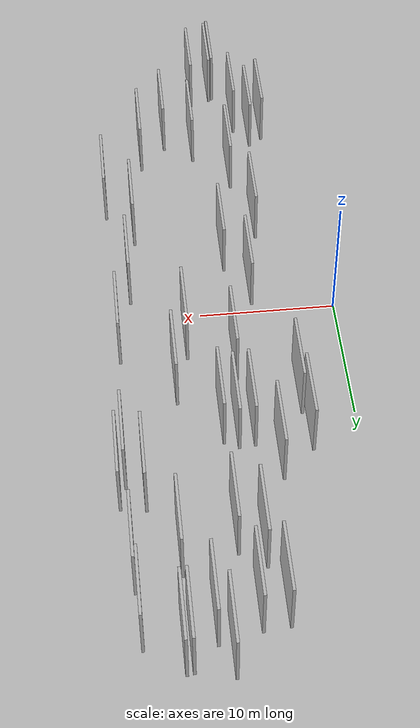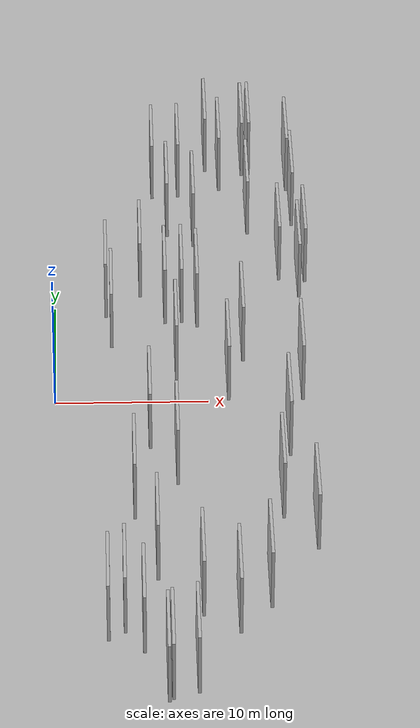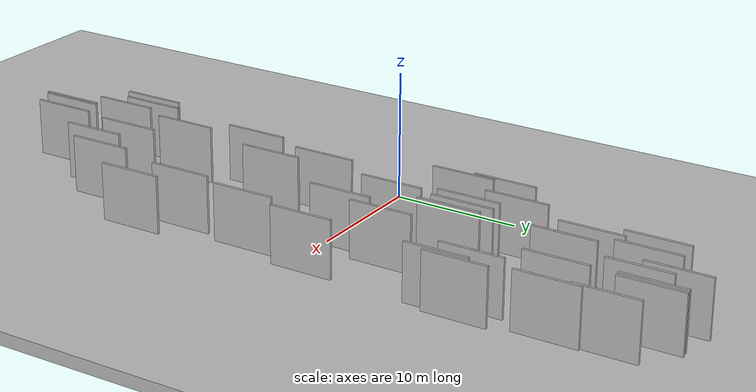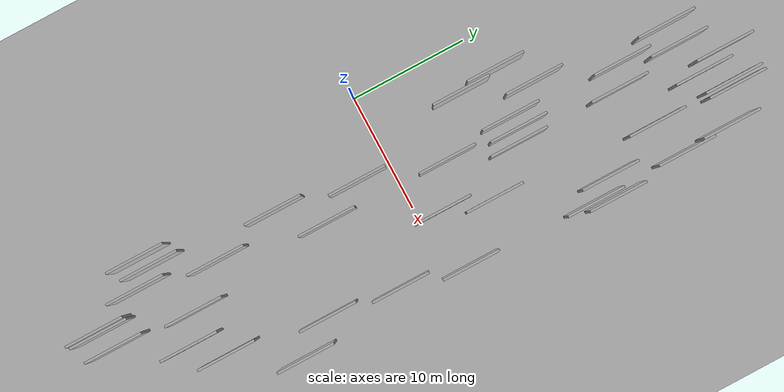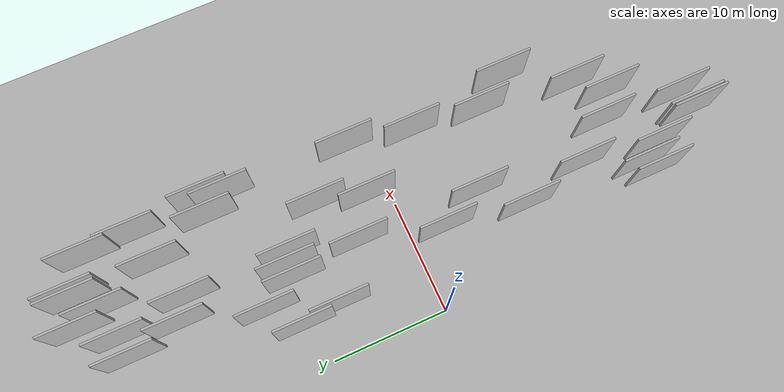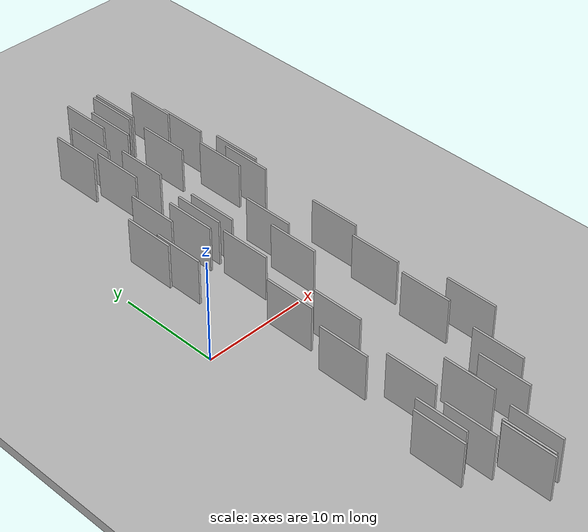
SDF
<?xml version="1.0" encoding="utf-8"?>

<sdf version="1.6">

   <world name="default">

      <gui fullscreen="0">

         <camera name="user_camera">

            <pose>-15 0 4.57585 0 0 0</pose>

            <view_controller>orbit</view_controller>

         </camera>

      </gui>

      <scene>

         <sky>

           <clouds>

             <speed>12</speed>

           </clouds>

         </sky>

         <ambient>0.4 0.4 0.4 1</ambient>

         <background>0.7 0.7 0.7 1</background>

         <shadows>1</shadows>

      </scene>

      <gravity>0 0 -9.8066</gravity>

      <magnetic_field>6e-06 2.3e-05 -4.2e-05</magnetic_field>

      <physics default="0" name="default_physics" type="ode">

         <ode>

            <solver>

               <type>quick</type>

               <iters>10</iters>

               <sor>1.0</sor>

               <use_dynamic_moi_rescaling>0</use_dynamic_moi_rescaling>

            </solver>

            <constraints>

               <cfm>0</cfm>

               <erp>0.2</erp>

               <contact_max_correcting_vel>100</contact_max_correcting_vel>

               <contact_surface_layer>0.001</contact_surface_layer>

            </constraints>

         </ode>

         <max_step_size>0.004</max_step_size>

         <real_time_factor>1</real_time_factor>

         <real_time_update_rate>250</real_time_update_rate>

      </physics>

      <light name="sun" type="directional">

         <cast_shadows>1</cast_shadows>

         <pose>0 0 10 0 0 0</pose>

         <diffuse>0.8 0.8 0.8 1</diffuse>

         <specular>0.2 0.2 0.2 1</specular>

         <attenuation>

            <range>1000</range>

            <constant>0.9</constant>

            <linear>0.01</linear>

            <quadratic>0.001</quadratic>

         </attenuation>

         <direction>-0.5 0.1 -0.9</direction>

      </light>

      <include>

         <name>ground_plane_1</name>

         <uri>model://HANNAS_ground_plane</uri>

         <pose>0 0 0  0 0 0</pose>

      </include>

      <include>

         <name>ground_plane_2</name>

         <uri>model://HANNAS_ground_plane</uri>

         <pose>100 0 0  0 0 0</pose>

      </include>

      <model name="HANNAS_wall_1">

         <static>1</static>

         <pose frame="">16.2850 20.9617 0.0 0.000000 0.000000 1.570796</pose>

         <link name="link">

            <pose frame="">0 0 2.50 0 0 0</pose>

            <collision name="collision">

               <geometry>

                  <box>

                     <size>5.00 0.2 5.00</size>

                  </box>

               </geometry>

               <max_contacts>10</max_contacts>

               <surface>

                  <contact>

                     <ode/>

                  </contact>

                  <bounce/>

                  <friction>

                     <torsional>

                        <ode/>

                     </torsional>

                     <ode/>

                  </friction>

               </surface>

            </collision>

            <visual name="visual">

               <cast_shadows>0</cast_shadows>

               <geometry>

                  <box>

                     <size>5.00 0.2 5.00</size>

                  </box>

               </geometry>

               <material>

                  <script>

                     <uri>model://HANNAS_wall/materials/scripts</uri>

                     <uri>model://HANNAS_wall/materials/textures</uri>

                     <name>vrc/HANNAS_wall</name>

                  </script>

               </material>

            </visual>

            <self_collide>0</self_collide>

            <enable_wind>0</enable_wind>

            <kinematic>0</kinematic>

         </link>

      </model>

      <model name="HANNAS_wall_2">

         <static>1</static>

         <pose frame="">8.5123 24.4699 0.0 0.000000 0.000000 1.570796</pose>

         <link name="link">

            <pose frame="">0 0 2.50 0 0 0</pose>

            <collision name="collision">

               <geometry>

                  <box>

                     <size>5.00 0.2 5.00</size>

                  </box>

               </geometry>

               <max_contacts>10</max_contacts>

               <surface>

                  <contact>

                     <ode/>

                  </contact>

                  <bounce/>

                  <friction>

                     <torsional>

                        <ode/>

                     </torsional>

                     <ode/>

                  </friction>

               </surface>

            </collision>

            <visual name="visual">

               <cast_shadows>0</cast_shadows>

               <geometry>

                  <box>

                     <size>5.00 0.2 5.00</size>

                  </box>

               </geometry>

               <material>

                  <script>

                     <uri>model://HANNAS_wall/materials/scripts</uri>

                     <uri>model://HANNAS_wall/materials/textures</uri>

                     <name>vrc/HANNAS_wall</name>

                  </script>

               </material>

            </visual>

            <self_collide>0</self_collide>

            <enable_wind>0</enable_wind>

            <kinematic>0</kinematic>

         </link>

      </model>

      <model name="HANNAS_wall_3">

         <static>1</static>

         <pose frame="">9.1165 -18.8987 0.0 0.000000 0.000000 1.570796</pose>

         <link name="link">

            <pose frame="">0 0 2.50 0 0 0</pose>

            <collision name="collision">

               <geometry>

                  <box>

                     <size>5.00 0.2 5.00</size>

                  </box>

               </geometry>

               <max_contacts>10</max_contacts>

               <surface>

                  <contact>

                     <ode/>

                  </contact>

                  <bounce/>

                  <friction>

                     <torsional>

                        <ode/>

                     </torsional>

                     <ode/>

                  </friction>

               </surface>

            </collision>

            <visual name="visual">

               <cast_shadows>0</cast_shadows>

               <geometry>

                  <box>

                     <size>5.00 0.2 5.00</size>

                  </box>

               </geometry>

               <material>

                  <script>

                     <uri>model://HANNAS_wall/materials/scripts</uri>

                     <uri>model://HANNAS_wall/materials/textures</uri>

                     <name>vrc/HANNAS_wall</name>

                  </script>

               </material>

            </visual>

            <self_collide>0</self_collide>

            <enable_wind>0</enable_wind>

            <kinematic>0</kinematic>

         </link>

      </model>

      <model name="HANNAS_wall_4">

         <static>1</static>

         <pose frame="">7.3375 10.1421 0.0 0.000000 0.000000 1.570796</pose>

         <link name="link">

            <pose frame="">0 0 2.50 0 0 0</pose>

            <collision name="collision">

               <geometry>

                  <box>

                     <size>5.00 0.2 5.00</size>

                  </box>

               </geometry>

               <max_contacts>10</max_contacts>

               <surface>

                  <contact>

                     <ode/>

                  </contact>

                  <bounce/>

                  <friction>

                     <torsional>

                        <ode/>

                     </torsional>

                     <ode/>

                  </friction>

               </surface>

            </collision>

            <visual name="visual">

               <cast_shadows>0</cast_shadows>

               <geometry>

                  <box>

                     <size>5.00 0.2 5.00</size>

                  </box>

               </geometry>

               <material>

                  <script>

                     <uri>model://HANNAS_wall/materials/scripts</uri>

                     <uri>model://HANNAS_wall/materials/textures</uri>

                     <name>vrc/HANNAS_wall</name>

                  </script>

               </material>

            </visual>

            <self_collide>0</self_collide>

            <enable_wind>0</enable_wind>

            <kinematic>0</kinematic>

         </link>

      </model>

      <model name="HANNAS_wall_5">

         <static>1</static>

         <pose frame="">16.0768 25.0538 0.0 0.000000 0.000000 1.570796</pose>

         <link name="link">

            <pose frame="">0 0 2.50 0 0 0</pose>

            <collision name="collision">

               <geometry>

                  <box>

                     <size>5.00 0.2 5.00</size>

                  </box>

               </geometry>

               <max_contacts>10</max_contacts>

               <surface>

                  <contact>

                     <ode/>

                  </contact>

                  <bounce/>

                  <friction>

                     <torsional>

                        <ode/>

                     </torsional>

                     <ode/>

                  </friction>

               </surface>

            </collision>

            <visual name="visual">

               <cast_shadows>0</cast_shadows>

               <geometry>

                  <box>

                     <size>5.00 0.2 5.00</size>

                  </box>

               </geometry>

               <material>

                  <script>

                     <uri>model://HANNAS_wall/materials/scripts</uri>

                     <uri>model://HANNAS_wall/materials/textures</uri>

                     <name>vrc/HANNAS_wall</name>

                  </script>

               </material>

            </visual>

            <self_collide>0</self_collide>

            <enable_wind>0</enable_wind>

            <kinematic>0</kinematic>

         </link>

      </model>

      <model name="HANNAS_wall_6">

         <static>1</static>

         <pose frame="">11.3872 25.1370 0.0 0.000000 0.000000 1.570796</pose>

         <link name="link">

            <pose frame="">0 0 2.50 0 0 0</pose>

            <collision name="collision">

               <geometry>

                  <box>

                     <size>5.00 0.2 5.00</size>

                  </box>

               </geometry>

               <max_contacts>10</max_contacts>

               <surface>

                  <contact>

                     <ode/>

                  </contact>

                  <bounce/>

                  <friction>

                     <torsional>

                        <ode/>

                     </torsional>

                     <ode/>

                  </friction>

               </surface>

            </collision>

            <visual name="visual">

               <cast_shadows>0</cast_shadows>

               <geometry>

                  <box>

                     <size>5.00 0.2 5.00</size>

                  </box>

               </geometry>

               <material>

                  <script>

                     <uri>model://HANNAS_wall/materials/scripts</uri>

                     <uri>model://HANNAS_wall/materials/textures</uri>

                     <name>vrc/HANNAS_wall</name>

                  </script>

               </material>

            </visual>

            <self_collide>0</self_collide>

            <enable_wind>0</enable_wind>

            <kinematic>0</kinematic>

         </link>

      </model>

      <model name="HANNAS_wall_7">

         <static>1</static>

         <pose frame="">8.6563 -25.7022 0.0 0.000000 0.000000 1.570796</pose>

         <link name="link">

            <pose frame="">0 0 2.50 0 0 0</pose>

            <collision name="collision">

               <geometry>

                  <box>

                     <size>5.00 0.2 5.00</size>

                  </box>

               </geometry>

               <max_contacts>10</max_contacts>

               <surface>

                  <contact>

                     <ode/>

                  </contact>

                  <bounce/>

                  <friction>

                     <torsional>

                        <ode/>

                     </torsional>

                     <ode/>

                  </friction>

               </surface>

            </collision>

            <visual name="visual">

               <cast_shadows>0</cast_shadows>

               <geometry>

                  <box>

                     <size>5.00 0.2 5.00</size>

                  </box>

               </geometry>

               <material>

                  <script>

                     <uri>model://HANNAS_wall/materials/scripts</uri>

                     <uri>model://HANNAS_wall/materials/textures</uri>

                     <name>vrc/HANNAS_wall</name>

                  </script>

               </material>

            </visual>

            <self_collide>0</self_collide>

            <enable_wind>0</enable_wind>

            <kinematic>0</kinematic>

         </link>

      </model>

      <model name="HANNAS_wall_8">

         <static>1</static>

         <pose frame="">7.1136 -26.2114 0.0 0.000000 0.000000 1.570796</pose>

         <link name="link">

            <pose frame="">0 0 2.50 0 0 0</pose>

            <collision name="collision">

               <geometry>

                  <box>

                     <size>5.00 0.2 5.00</size>

                  </box>

               </geometry>

               <max_contacts>10</max_contacts>

               <surface>

                  <contact>

                     <ode/>

                  </contact>

                  <bounce/>

                  <friction>

                     <torsional>

                        <ode/>

                     </torsional>

                     <ode/>

                  </friction>

               </surface>

            </collision>

            <visual name="visual">

               <cast_shadows>0</cast_shadows>

               <geometry>

                  <box>

                     <size>5.00 0.2 5.00</size>

                  </box>

               </geometry>

               <material>

                  <script>

                     <uri>model://HANNAS_wall/materials/scripts</uri>

                     <uri>model://HANNAS_wall/materials/textures</uri>

                     <name>vrc/HANNAS_wall</name>

                  </script>

               </material>

            </visual>

            <self_collide>0</self_collide>

            <enable_wind>0</enable_wind>

            <kinematic>0</kinematic>

         </link>

      </model>

      <model name="HANNAS_wall_9">

         <static>1</static>

         <pose frame="">15.1032 -3.7774 0.0 0.000000 0.000000 1.570796</pose>

         <link name="link">

            <pose frame="">0 0 2.50 0 0 0</pose>

            <collision name="collision">

               <geometry>

                  <box>

                     <size>5.00 0.2 5.00</size>

                  </box>

               </geometry>

               <max_contacts>10</max_contacts>

               <surface>

                  <contact>

                     <ode/>

                  </contact>

                  <bounce/>

                  <friction>

                     <torsional>

                        <ode/>

                     </torsional>

                     <ode/>

                  </friction>

               </surface>

            </collision>

            <visual name="visual">

               <cast_shadows>0</cast_shadows>

               <geometry>

                  <box>

                     <size>5.00 0.2 5.00</size>

                  </box>

               </geometry>

               <material>

                  <script>

                     <uri>model://HANNAS_wall/materials/scripts</uri>

                     <uri>model://HANNAS_wall/materials/textures</uri>

                     <name>vrc/HANNAS_wall</name>

                  </script>

               </material>

            </visual>

            <self_collide>0</self_collide>

            <enable_wind>0</enable_wind>

            <kinematic>0</kinematic>

         </link>

      </model>

      <model name="HANNAS_wall_10">

         <static>1</static>

         <pose frame="">4.2993 -20.2837 0.0 0.000000 0.000000 1.570796</pose>

         <link name="link">

            <pose frame="">0 0 2.50 0 0 0</pose>

            <collision name="collision">

               <geometry>

                  <box>

                     <size>5.00 0.2 5.00</size>

                  </box>

               </geometry>

               <max_contacts>10</max_contacts>

               <surface>

                  <contact>

                     <ode/>

                  </contact>

                  <bounce/>

                  <friction>

                     <torsional>

                        <ode/>

                     </torsional>

                     <ode/>

                  </friction>

               </surface>

            </collision>

            <visual name="visual">

               <cast_shadows>0</cast_shadows>

               <geometry>

                  <box>

                     <size>5.00 0.2 5.00</size>

                  </box>

               </geometry>

               <material>

                  <script>

                     <uri>model://HANNAS_wall/materials/scripts</uri>

                     <uri>model://HANNAS_wall/materials/textures</uri>

                     <name>vrc/HANNAS_wall</name>

                  </script>

               </material>

            </visual>

            <self_collide>0</self_collide>

            <enable_wind>0</enable_wind>

            <kinematic>0</kinematic>

         </link>

      </model>

      <model name="HANNAS_wall_11">

         <static>1</static>

         <pose frame="">6.3876 -15.5115 0.0 0.000000 0.000000 1.570796</pose>

         <link name="link">

            <pose frame="">0 0 2.50 0 0 0</pose>

            <collision name="collision">

               <geometry>

                  <box>

                     <size>5.00 0.2 5.00</size>

                  </box>

               </geometry>

               <max_contacts>10</max_contacts>

               <surface>

                  <contact>

                     <ode/>

                  </contact>

                  <bounce/>

                  <friction>

                     <torsional>

                        <ode/>

                     </torsional>

                     <ode/>

                  </friction>

               </surface>

            </collision>

            <visual name="visual">

               <cast_shadows>0</cast_shadows>

               <geometry>

                  <box>

                     <size>5.00 0.2 5.00</size>

                  </box>

               </geometry>

               <material>

                  <script>

                     <uri>model://HANNAS_wall/materials/scripts</uri>

                     <uri>model://HANNAS_wall/materials/textures</uri>

                     <name>vrc/HANNAS_wall</name>

                  </script>

               </material>

            </visual>

            <self_collide>0</self_collide>

            <enable_wind>0</enable_wind>

            <kinematic>0</kinematic>

         </link>

      </model>

      <model name="HANNAS_wall_12">

         <static>1</static>

         <pose frame="">15.1484 14.7939 0.0 0.000000 0.000000 1.570796</pose>

         <link name="link">

            <pose frame="">0 0 2.50 0 0 0</pose>

            <collision name="collision">

               <geometry>

                  <box>

                     <size>5.00 0.2 5.00</size>

                  </box>

               </geometry>

               <max_contacts>10</max_contacts>

               <surface>

                  <contact>

                     <ode/>

                  </contact>

                  <bounce/>

                  <friction>

                     <torsional>

                        <ode/>

                     </torsional>

                     <ode/>

                  </friction>

               </surface>

            </collision>

            <visual name="visual">

               <cast_shadows>0</cast_shadows>

               <geometry>

                  <box>

                     <size>5.00 0.2 5.00</size>

                  </box>

               </geometry>

               <material>

                  <script>

                     <uri>model://HANNAS_wall/materials/scripts</uri>

                     <uri>model://HANNAS_wall/materials/textures</uri>

                     <name>vrc/HANNAS_wall</name>

                  </script>

               </material>

            </visual>

            <self_collide>0</self_collide>

            <enable_wind>0</enable_wind>

            <kinematic>0</kinematic>

         </link>

      </model>

      <model name="HANNAS_wall_13">

         <static>1</static>

         <pose frame="">7.8260 -6.4523 0.0 0.000000 0.000000 1.570796</pose>

         <link name="link">

            <pose frame="">0 0 2.50 0 0 0</pose>

            <collision name="collision">

               <geometry>

                  <box>

                     <size>5.00 0.2 5.00</size>

                  </box>

               </geometry>

               <max_contacts>10</max_contacts>

               <surface>

                  <contact>

                     <ode/>

                  </contact>

                  <bounce/>

                  <friction>

                     <torsional>

                        <ode/>

                     </torsional>

                     <ode/>

                  </friction>

               </surface>

            </collision>

            <visual name="visual">

               <cast_shadows>0</cast_shadows>

               <geometry>

                  <box>

                     <size>5.00 0.2 5.00</size>

                  </box>

               </geometry>

               <material>

                  <script>

                     <uri>model://HANNAS_wall/materials/scripts</uri>

                     <uri>model://HANNAS_wall/materials/textures</uri>

                     <name>vrc/HANNAS_wall</name>

                  </script>

               </material>

            </visual>

            <self_collide>0</self_collide>

            <enable_wind>0</enable_wind>

            <kinematic>0</kinematic>

         </link>

      </model>

      <model name="HANNAS_wall_14">

         <static>1</static>

         <pose frame="">11.3281 1.9668 0.0 0.000000 0.000000 1.570796</pose>

         <link name="link">

            <pose frame="">0 0 2.50 0 0 0</pose>

            <collision name="collision">

               <geometry>

                  <box>

                     <size>5.00 0.2 5.00</size>

                  </box>

               </geometry>

               <max_contacts>10</max_contacts>

               <surface>

                  <contact>

                     <ode/>

                  </contact>

                  <bounce/>

                  <friction>

                     <torsional>

                        <ode/>

                     </torsional>

                     <ode/>

                  </friction>

               </surface>

            </collision>

            <visual name="visual">

               <cast_shadows>0</cast_shadows>

               <geometry>

                  <box>

                     <size>5.00 0.2 5.00</size>

                  </box>

               </geometry>

               <material>

                  <script>

                     <uri>model://HANNAS_wall/materials/scripts</uri>

                     <uri>model://HANNAS_wall/materials/textures</uri>

                     <name>vrc/HANNAS_wall</name>

                  </script>

               </material>

            </visual>

            <self_collide>0</self_collide>

            <enable_wind>0</enable_wind>

            <kinematic>0</kinematic>

         </link>

      </model>

      <model name="HANNAS_wall_15">

         <static>1</static>

         <pose frame="">7.6698 19.8622 0.0 0.000000 0.000000 1.570796</pose>

         <link name="link">

            <pose frame="">0 0 2.50 0 0 0</pose>

            <collision name="collision">

               <geometry>

                  <box>

                     <size>5.00 0.2 5.00</size>

                  </box>

               </geometry>

               <max_contacts>10</max_contacts>

               <surface>

                  <contact>

                     <ode/>

                  </contact>

                  <bounce/>

                  <friction>

                     <torsional>

                        <ode/>

                     </torsional>

                     <ode/>

                  </friction>

               </surface>

            </collision>

            <visual name="visual">

               <cast_shadows>0</cast_shadows>

               <geometry>

                  <box>

                     <size>5.00 0.2 5.00</size>

                  </box>

               </geometry>

               <material>

                  <script>

                     <uri>model://HANNAS_wall/materials/scripts</uri>

                     <uri>model://HANNAS_wall/materials/textures</uri>

                     <name>vrc/HANNAS_wall</name>

                  </script>

               </material>

            </visual>

            <self_collide>0</self_collide>

            <enable_wind>0</enable_wind>

            <kinematic>0</kinematic>

         </link>

      </model>

      <model name="HANNAS_wall_16">

         <static>1</static>

         <pose frame="">6.7190 24.3007 0.0 0.000000 0.000000 1.570796</pose>

         <link name="link">

            <pose frame="">0 0 2.50 0 0 0</pose>

            <collision name="collision">

               <geometry>

                  <box>

                     <size>5.00 0.2 5.00</size>

                  </box>

               </geometry>

               <max_contacts>10</max_contacts>

               <surface>

                  <contact>

                     <ode/>

                  </contact>

                  <bounce/>

                  <friction>

                     <torsional>

                        <ode/>

                     </torsional>

                     <ode/>

                  </friction>

               </surface>

            </collision>

            <visual name="visual">

               <cast_shadows>0</cast_shadows>

               <geometry>

                  <box>

                     <size>5.00 0.2 5.00</size>

                  </box>

               </geometry>

               <material>

                  <script>

                     <uri>model://HANNAS_wall/materials/scripts</uri>

                     <uri>model://HANNAS_wall/materials/textures</uri>

                     <name>vrc/HANNAS_wall</name>

                  </script>

               </material>

            </visual>

            <self_collide>0</self_collide>

            <enable_wind>0</enable_wind>

            <kinematic>0</kinematic>

         </link>

      </model>

      <model name="HANNAS_wall_17">

         <static>1</static>

         <pose frame="">8.4577 10.2517 0.0 0.000000 0.000000 1.570796</pose>

         <link name="link">

            <pose frame="">0 0 2.50 0 0 0</pose>

            <collision name="collision">

               <geometry>

                  <box>

                     <size>5.00 0.2 5.00</size>

                  </box>

               </geometry>

               <max_contacts>10</max_contacts>

               <surface>

                  <contact>

                     <ode/>

                  </contact>

                  <bounce/>

                  <friction>

                     <torsional>

                        <ode/>

                     </torsional>

                     <ode/>

                  </friction>

               </surface>

            </collision>

            <visual name="visual">

               <cast_shadows>0</cast_shadows>

               <geometry>

                  <box>

                     <size>5.00 0.2 5.00</size>

                  </box>

               </geometry>

               <material>

                  <script>

                     <uri>model://HANNAS_wall/materials/scripts</uri>

                     <uri>model://HANNAS_wall/materials/textures</uri>

                     <name>vrc/HANNAS_wall</name>

                  </script>

               </material>

            </visual>

            <self_collide>0</self_collide>

            <enable_wind>0</enable_wind>

            <kinematic>0</kinematic>

         </link>

      </model>

      <model name="HANNAS_wall_18">

         <static>1</static>

         <pose frame="">6.8501 -26.4344 0.0 0.000000 0.000000 1.570796</pose>

         <link name="link">

            <pose frame="">0 0 2.50 0 0 0</pose>

            <collision name="collision">

               <geometry>

                  <box>

                     <size>5.00 0.2 5.00</size>

                  </box>

               </geometry>

               <max_contacts>10</max_contacts>

               <surface>

                  <contact>

                     <ode/>

                  </contact>

                  <bounce/>

                  <friction>

                     <torsional>

                        <ode/>

                     </torsional>

                     <ode/>

                  </friction>

               </surface>

            </collision>

            <visual name="visual">

               <cast_shadows>0</cast_shadows>

               <geometry>

                  <box>

                     <size>5.00 0.2 5.00</size>

                  </box>

               </geometry>

               <material>

                  <script>

                     <uri>model://HANNAS_wall/materials/scripts</uri>

                     <uri>model://HANNAS_wall/materials/textures</uri>

                     <name>vrc/HANNAS_wall</name>

                  </script>

               </material>

            </visual>

            <self_collide>0</self_collide>

            <enable_wind>0</enable_wind>

            <kinematic>0</kinematic>

         </link>

      </model>

      <model name="HANNAS_wall_19">

         <static>1</static>

         <pose frame="">16.1686 1.9023 0.0 0.000000 0.000000 1.570796</pose>

         <link name="link">

            <pose frame="">0 0 2.50 0 0 0</pose>

            <collision name="collision">

               <geometry>

                  <box>

                     <size>5.00 0.2 5.00</size>

                  </box>

               </geometry>

               <max_contacts>10</max_contacts>

               <surface>

                  <contact>

                     <ode/>

                  </contact>

                  <bounce/>

                  <friction>

                     <torsional>

                        <ode/>

                     </torsional>

                     <ode/>

                  </friction>

               </surface>

            </collision>

            <visual name="visual">

               <cast_shadows>0</cast_shadows>

               <geometry>

                  <box>

                     <size>5.00 0.2 5.00</size>

                  </box>

               </geometry>

               <material>

                  <script>

                     <uri>model://HANNAS_wall/materials/scripts</uri>

                     <uri>model://HANNAS_wall/materials/textures</uri>

                     <name>vrc/HANNAS_wall</name>

                  </script>

               </material>

            </visual>

            <self_collide>0</self_collide>

            <enable_wind>0</enable_wind>

            <kinematic>0</kinematic>

         </link>

      </model>

      <model name="HANNAS_wall_20">

         <static>1</static>

         <pose frame="">12.3964 6.0220 0.0 0.000000 0.000000 1.570796</pose>

         <link name="link">

            <pose frame="">0 0 2.50 0 0 0</pose>

            <collision name="collision">

               <geometry>

                  <box>

                     <size>5.00 0.2 5.00</size>

                  </box>

               </geometry>

               <max_contacts>10</max_contacts>

               <surface>

                  <contact>

                     <ode/>

                  </contact>

                  <bounce/>

                  <friction>

                     <torsional>

                        <ode/>

                     </torsional>

                     <ode/>

                  </friction>

               </surface>

            </collision>

            <visual name="visual">

               <cast_shadows>0</cast_shadows>

               <geometry>

                  <box>

                     <size>5.00 0.2 5.00</size>

                  </box>

               </geometry>

               <material>

                  <script>

                     <uri>model://HANNAS_wall/materials/scripts</uri>

                     <uri>model://HANNAS_wall/materials/textures</uri>

                     <name>vrc/HANNAS_wall</name>

                  </script>

               </material>

            </visual>

            <self_collide>0</self_collide>

            <enable_wind>0</enable_wind>

            <kinematic>0</kinematic>

         </link>

      </model>

      <model name="HANNAS_wall_21">

         <static>1</static>

         <pose frame="">13.5122 26.9540 0.0 0.000000 0.000000 1.570796</pose>

         <link name="link">

            <pose frame="">0 0 2.50 0 0 0</pose>

            <collision name="collision">

               <geometry>

                  <box>

                     <size>5.00 0.2 5.00</size>

                  </box>

               </geometry>

               <max_contacts>10</max_contacts>

               <surface>

                  <contact>

                     <ode/>

                  </contact>

                  <bounce/>

                  <friction>

                     <torsional>

                        <ode/>

                     </torsional>

                     <ode/>

                  </friction>

               </surface>

            </collision>

            <visual name="visual">

               <cast_shadows>0</cast_shadows>

               <geometry>

                  <box>

                     <size>5.00 0.2 5.00</size>

                  </box>

               </geometry>

               <material>

                  <script>

                     <uri>model://HANNAS_wall/materials/scripts</uri>

                     <uri>model://HANNAS_wall/materials/textures</uri>

                     <name>vrc/HANNAS_wall</name>

                  </script>

               </material>

            </visual>

            <self_collide>0</self_collide>

            <enable_wind>0</enable_wind>

            <kinematic>0</kinematic>

         </link>

      </model>

      <model name="HANNAS_wall_22">

         <static>1</static>

         <pose frame="">13.1874 20.0100 0.0 0.000000 0.000000 1.570796</pose>

         <link name="link">

            <pose frame="">0 0 2.50 0 0 0</pose>

            <collision name="collision">

               <geometry>

                  <box>

                     <size>5.00 0.2 5.00</size>

                  </box>

               </geometry>

               <max_contacts>10</max_contacts>

               <surface>

                  <contact>

                     <ode/>

                  </contact>

                  <bounce/>

                  <friction>

                     <torsional>

                        <ode/>

                     </torsional>

                     <ode/>

                  </friction>

               </surface>

            </collision>

            <visual name="visual">

               <cast_shadows>0</cast_shadows>

               <geometry>

                  <box>

                     <size>5.00 0.2 5.00</size>

                  </box>

               </geometry>

               <material>

                  <script>

                     <uri>model://HANNAS_wall/materials/scripts</uri>

                     <uri>model://HANNAS_wall/materials/textures</uri>

                     <name>vrc/HANNAS_wall</name>

                  </script>

               </material>

            </visual>

            <self_collide>0</self_collide>

            <enable_wind>0</enable_wind>

            <kinematic>0</kinematic>

         </link>

      </model>

      <model name="HANNAS_wall_23">

         <static>1</static>

         <pose frame="">16.8858 14.5298 0.0 0.000000 0.000000 1.570796</pose>

         <link name="link">

            <pose frame="">0 0 2.50 0 0 0</pose>

            <collision name="collision">

               <geometry>

                  <box>

                     <size>5.00 0.2 5.00</size>

                  </box>

               </geometry>

               <max_contacts>10</max_contacts>

               <surface>

                  <contact>

                     <ode/>

                  </contact>

                  <bounce/>

                  <friction>

                     <torsional>

                        <ode/>

                     </torsional>

                     <ode/>

                  </friction>

               </surface>

            </collision>

            <visual name="visual">

               <cast_shadows>0</cast_shadows>

               <geometry>

                  <box>

                     <size>5.00 0.2 5.00</size>

                  </box>

               </geometry>

               <material>

                  <script>

                     <uri>model://HANNAS_wall/materials/scripts</uri>

                     <uri>model://HANNAS_wall/materials/textures</uri>

                     <name>vrc/HANNAS_wall</name>

                  </script>

               </material>

            </visual>

            <self_collide>0</self_collide>

            <enable_wind>0</enable_wind>

            <kinematic>0</kinematic>

         </link>

      </model>

      <model name="HANNAS_wall_24">

         <static>1</static>

         <pose frame="">5.0446 -9.7269 0.0 0.000000 0.000000 1.570796</pose>

         <link name="link">

            <pose frame="">0 0 2.50 0 0 0</pose>

            <collision name="collision">

               <geometry>

                  <box>

                     <size>5.00 0.2 5.00</size>

                  </box>

               </geometry>

               <max_contacts>10</max_contacts>

               <surface>

                  <contact>

                     <ode/>

                  </contact>

                  <bounce/>

                  <friction>

                     <torsional>

                        <ode/>

                     </torsional>

                     <ode/>

                  </friction>

               </surface>

            </collision>

            <visual name="visual">

               <cast_shadows>0</cast_shadows>

               <geometry>

                  <box>

                     <size>5.00 0.2 5.00</size>

                  </box>

               </geometry>

               <material>

                  <script>

                     <uri>model://HANNAS_wall/materials/scripts</uri>

                     <uri>model://HANNAS_wall/materials/textures</uri>

                     <name>vrc/HANNAS_wall</name>

                  </script>

               </material>

            </visual>

            <self_collide>0</self_collide>

            <enable_wind>0</enable_wind>

            <kinematic>0</kinematic>

         </link>

      </model>

      <model name="HANNAS_wall_25">

         <static>1</static>

         <pose frame="">3.4030 10.8949 0.0 0.000000 0.000000 1.570796</pose>

         <link name="link">

            <pose frame="">0 0 2.50 0 0 0</pose>

            <collision name="collision">

               <geometry>

                  <box>

                     <size>5.00 0.2 5.00</size>

                  </box>

               </geometry>

               <max_contacts>10</max_contacts>

               <surface>

                  <contact>

                     <ode/>

                  </contact>

                  <bounce/>

                  <friction>

                     <torsional>

                        <ode/>

                     </torsional>

                     <ode/>

                  </friction>

               </surface>

            </collision>

            <visual name="visual">

               <cast_shadows>0</cast_shadows>

               <geometry>

                  <box>

                     <size>5.00 0.2 5.00</size>

                  </box>

               </geometry>

               <material>

                  <script>

                     <uri>model://HANNAS_wall/materials/scripts</uri>

                     <uri>model://HANNAS_wall/materials/textures</uri>

                     <name>vrc/HANNAS_wall</name>

                  </script>

               </material>

            </visual>

            <self_collide>0</self_collide>

            <enable_wind>0</enable_wind>

            <kinematic>0</kinematic>

         </link>

      </model>

      <model name="HANNAS_wall_26">

         <static>1</static>

         <pose frame="">16.4226 12.8266 0.0 0.000000 0.000000 1.570796</pose>

         <link name="link">

            <pose frame="">0 0 2.50 0 0 0</pose>

            <collision name="collision">

               <geometry>

                  <box>

                     <size>5.00 0.2 5.00</size>

                  </box>

               </geometry>

               <max_contacts>10</max_contacts>

               <surface>

                  <contact>

                     <ode/>

                  </contact>

                  <bounce/>

                  <friction>

                     <torsional>

                        <ode/>

                     </torsional>

                     <ode/>

                  </friction>

               </surface>

            </collision>

            <visual name="visual">

               <cast_shadows>0</cast_shadows>

               <geometry>

                  <box>

                     <size>5.00 0.2 5.00</size>

                  </box>

               </geometry>

               <material>

                  <script>

                     <uri>model://HANNAS_wall/materials/scripts</uri>

                     <uri>model://HANNAS_wall/materials/textures</uri>

                     <name>vrc/HANNAS_wall</name>

                  </script>

               </material>

            </visual>

            <self_collide>0</self_collide>

            <enable_wind>0</enable_wind>

            <kinematic>0</kinematic>

         </link>

      </model>

      <model name="HANNAS_wall_27">

         <static>1</static>

         <pose frame="">13.3146 -18.2218 0.0 0.000000 0.000000 1.570796</pose>

         <link name="link">

            <pose frame="">0 0 2.50 0 0 0</pose>

            <collision name="collision">

               <geometry>

                  <box>

                     <size>5.00 0.2 5.00</size>

                  </box>

               </geometry>

               <max_contacts>10</max_contacts>

               <surface>

                  <contact>

                     <ode/>

                  </contact>

                  <bounce/>

                  <friction>

                     <torsional>

                        <ode/>

                     </torsional>

                     <ode/>

                  </friction>

               </surface>

            </collision>

            <visual name="visual">

               <cast_shadows>0</cast_shadows>

               <geometry>

                  <box>

                     <size>5.00 0.2 5.00</size>

                  </box>

               </geometry>

               <material>

                  <script>

                     <uri>model://HANNAS_wall/materials/scripts</uri>

                     <uri>model://HANNAS_wall/materials/textures</uri>

                     <name>vrc/HANNAS_wall</name>

                  </script>

               </material>

            </visual>

            <self_collide>0</self_collide>

            <enable_wind>0</enable_wind>

            <kinematic>0</kinematic>

         </link>

      </model>

      <model name="HANNAS_wall_28">

         <static>1</static>

         <pose frame="">7.9757 4.1804 0.0 0.000000 0.000000 1.570796</pose>

         <link name="link">

            <pose frame="">0 0 2.50 0 0 0</pose>

            <collision name="collision">

               <geometry>

                  <box>

                     <size>5.00 0.2 5.00</size>

                  </box>

               </geometry>

               <max_contacts>10</max_contacts>

               <surface>

                  <contact>

                     <ode/>

                  </contact>

                  <bounce/>

                  <friction>

                     <torsional>

                        <ode/>

                     </torsional>

                     <ode/>

                  </friction>

               </surface>

            </collision>

            <visual name="visual">

               <cast_shadows>0</cast_shadows>

               <geometry>

                  <box>

                     <size>5.00 0.2 5.00</size>

                  </box>

               </geometry>

               <material>

                  <script>

                     <uri>model://HANNAS_wall/materials/scripts</uri>

                     <uri>model://HANNAS_wall/materials/textures</uri>

                     <name>vrc/HANNAS_wall</name>

                  </script>

               </material>

            </visual>

            <self_collide>0</self_collide>

            <enable_wind>0</enable_wind>

            <kinematic>0</kinematic>

         </link>

      </model>

      <model name="HANNAS_wall_29">

         <static>1</static>

         <pose frame="">9.4392 18.6886 0.0 0.000000 0.000000 1.570796</pose>

         <link name="link">

            <pose frame="">0 0 2.50 0 0 0</pose>

            <collision name="collision">

               <geometry>

                  <box>

                     <size>5.00 0.2 5.00</size>

                  </box>

               </geometry>

               <max_contacts>10</max_contacts>

               <surface>

                  <contact>

                     <ode/>

                  </contact>

                  <bounce/>

                  <friction>

                     <torsional>

                        <ode/>

                     </torsional>

                     <ode/>

                  </friction>

               </surface>

            </collision>

            <visual name="visual">

               <cast_shadows>0</cast_shadows>

               <geometry>

                  <box>

                     <size>5.00 0.2 5.00</size>

                  </box>

               </geometry>

               <material>

                  <script>

                     <uri>model://HANNAS_wall/materials/scripts</uri>

                     <uri>model://HANNAS_wall/materials/textures</uri>

                     <name>vrc/HANNAS_wall</name>

                  </script>

               </material>

            </visual>

            <self_collide>0</self_collide>

            <enable_wind>0</enable_wind>

            <kinematic>0</kinematic>

         </link>

      </model>

      <model name="HANNAS_wall_30">

         <static>1</static>

         <pose frame="">14.4162 -9.8587 0.0 0.000000 0.000000 1.570796</pose>

         <link name="link">

            <pose frame="">0 0 2.50 0 0 0</pose>

            <collision name="collision">

               <geometry>

                  <box>

                     <size>5.00 0.2 5.00</size>

                  </box>

               </geometry>

               <max_contacts>10</max_contacts>

               <surface>

                  <contact>

                     <ode/>

                  </contact>

                  <bounce/>

                  <friction>

                     <torsional>

                        <ode/>

                     </torsional>

                     <ode/>

                  </friction>

               </surface>

            </collision>

            <visual name="visual">

               <cast_shadows>0</cast_shadows>

               <geometry>

                  <box>

                     <size>5.00 0.2 5.00</size>

                  </box>

               </geometry>

               <material>

                  <script>

                     <uri>model://HANNAS_wall/materials/scripts</uri>

                     <uri>model://HANNAS_wall/materials/textures</uri>

                     <name>vrc/HANNAS_wall</name>

                  </script>

               </material>

            </visual>

            <self_collide>0</self_collide>

            <enable_wind>0</enable_wind>

            <kinematic>0</kinematic>

         </link>

      </model>

      <model name="HANNAS_wall_31">

         <static>1</static>

         <pose frame="">9.4636 9.7417 0.0 0.000000 0.000000 1.570796</pose>

         <link name="link">

            <pose frame="">0 0 2.50 0 0 0</pose>

            <collision name="collision">

               <geometry>

                  <box>

                     <size>5.00 0.2 5.00</size>

                  </box>

               </geometry>

               <max_contacts>10</max_contacts>

               <surface>

                  <contact>

                     <ode/>

                  </contact>

                  <bounce/>

                  <friction>

                     <torsional>

                        <ode/>

                     </torsional>

                     <ode/>

                  </friction>

               </surface>

            </collision>

            <visual name="visual">

               <cast_shadows>0</cast_shadows>

               <geometry>

                  <box>

                     <size>5.00 0.2 5.00</size>

                  </box>

               </geometry>

               <material>

                  <script>

                     <uri>model://HANNAS_wall/materials/scripts</uri>

                     <uri>model://HANNAS_wall/materials/textures</uri>

                     <name>vrc/HANNAS_wall</name>

                  </script>

               </material>

            </visual>

            <self_collide>0</self_collide>

            <enable_wind>0</enable_wind>

            <kinematic>0</kinematic>

         </link>

      </model>

      <model name="HANNAS_wall_32">

         <static>1</static>

         <pose frame="">11.3332 -20.4743 0.0 0.000000 0.000000 1.570796</pose>

         <link name="link">

            <pose frame="">0 0 2.50 0 0 0</pose>

            <collision name="collision">

               <geometry>

                  <box>

                     <size>5.00 0.2 5.00</size>

                  </box>

               </geometry>

               <max_contacts>10</max_contacts>

               <surface>

                  <contact>

                     <ode/>

                  </contact>

                  <bounce/>

                  <friction>

                     <torsional>

                        <ode/>

                     </torsional>

                     <ode/>

                  </friction>

               </surface>

            </collision>

            <visual name="visual">

               <cast_shadows>0</cast_shadows>

               <geometry>

                  <box>

                     <size>5.00 0.2 5.00</size>

                  </box>

               </geometry>

               <material>

                  <script>

                     <uri>model://HANNAS_wall/materials/scripts</uri>

                     <uri>model://HANNAS_wall/materials/textures</uri>

                     <name>vrc/HANNAS_wall</name>

                  </script>

               </material>

            </visual>

            <self_collide>0</self_collide>

            <enable_wind>0</enable_wind>

            <kinematic>0</kinematic>

         </link>

      </model>

      <model name="HANNAS_wall_33">

         <static>1</static>

         <pose frame="">3.2729 -20.9939 0.0 0.000000 0.000000 1.570796</pose>

         <link name="link">

            <pose frame="">0 0 2.50 0 0 0</pose>

            <collision name="collision">

               <geometry>

                  <box>

                     <size>5.00 0.2 5.00</size>

                  </box>

               </geometry>

               <max_contacts>10</max_contacts>

               <surface>

                  <contact>

                     <ode/>

                  </contact>

                  <bounce/>

                  <friction>

                     <torsional>

                        <ode/>

                     </torsional>

                     <ode/>

                  </friction>

               </surface>

            </collision>

            <visual name="visual">

               <cast_shadows>0</cast_shadows>

               <geometry>

                  <box>

                     <size>5.00 0.2 5.00</size>

                  </box>

               </geometry>

               <material>

                  <script>

                     <uri>model://HANNAS_wall/materials/scripts</uri>

                     <uri>model://HANNAS_wall/materials/textures</uri>

                     <name>vrc/HANNAS_wall</name>

                  </script>

               </material>

            </visual>

            <self_collide>0</self_collide>

            <enable_wind>0</enable_wind>

            <kinematic>0</kinematic>

         </link>

      </model>

      <model name="HANNAS_wall_34">

         <static>1</static>

         <pose frame="">6.1259 -2.8483 0.0 0.000000 0.000000 1.570796</pose>

         <link name="link">

            <pose frame="">0 0 2.50 0 0 0</pose>

            <collision name="collision">

               <geometry>

                  <box>

                     <size>5.00 0.2 5.00</size>

                  </box>

               </geometry>

               <max_contacts>10</max_contacts>

               <surface>

                  <contact>

                     <ode/>

                  </contact>

                  <bounce/>

                  <friction>

                     <torsional>

                        <ode/>

                     </torsional>

                     <ode/>

                  </friction>

               </surface>

            </collision>

            <visual name="visual">

               <cast_shadows>0</cast_shadows>

               <geometry>

                  <box>

                     <size>5.00 0.2 5.00</size>

                  </box>

               </geometry>

               <material>

                  <script>

                     <uri>model://HANNAS_wall/materials/scripts</uri>

                     <uri>model://HANNAS_wall/materials/textures</uri>

                     <name>vrc/HANNAS_wall</name>

                  </script>

               </material>

            </visual>

            <self_collide>0</self_collide>

            <enable_wind>0</enable_wind>

            <kinematic>0</kinematic>

         </link>

      </model>

      <model name="HANNAS_wall_35">

         <static>1</static>

         <pose frame="">10.4834 27.4618 0.0 0.000000 0.000000 1.570796</pose>

         <link name="link">

            <pose frame="">0 0 2.50 0 0 0</pose>

            <collision name="collision">

               <geometry>

                  <box>

                     <size>5.00 0.2 5.00</size>

                  </box>

               </geometry>

               <max_contacts>10</max_contacts>

               <surface>

                  <contact>

                     <ode/>

                  </contact>

                  <bounce/>

                  <friction>

                     <torsional>

                        <ode/>

                     </torsional>

                     <ode/>

                  </friction>

               </surface>

            </collision>

            <visual name="visual">

               <cast_shadows>0</cast_shadows>

               <geometry>

                  <box>

                     <size>5.00 0.2 5.00</size>

                  </box>

               </geometry>

               <material>

                  <script>

                     <uri>model://HANNAS_wall/materials/scripts</uri>

                     <uri>model://HANNAS_wall/materials/textures</uri>

                     <name>vrc/HANNAS_wall</name>

                  </script>

               </material>

            </visual>

            <self_collide>0</self_collide>

            <enable_wind>0</enable_wind>

            <kinematic>0</kinematic>

         </link>

      </model>

      <model name="HANNAS_wall_36">

         <static>1</static>

         <pose frame="">13.0429 26.8832 0.0 0.000000 0.000000 1.570796</pose>

         <link name="link">

            <pose frame="">0 0 2.50 0 0 0</pose>

            <collision name="collision">

               <geometry>

                  <box>

                     <size>5.00 0.2 5.00</size>

                  </box>

               </geometry>

               <max_contacts>10</max_contacts>

               <surface>

                  <contact>

                     <ode/>

                  </contact>

                  <bounce/>

                  <friction>

                     <torsional>

                        <ode/>

                     </torsional>

                     <ode/>

                  </friction>

               </surface>

            </collision>

            <visual name="visual">

               <cast_shadows>0</cast_shadows>

               <geometry>

                  <box>

                     <size>5.00 0.2 5.00</size>

                  </box>

               </geometry>

               <material>

                  <script>

                     <uri>model://HANNAS_wall/materials/scripts</uri>

                     <uri>model://HANNAS_wall/materials/textures</uri>

                     <name>vrc/HANNAS_wall</name>

                  </script>

               </material>

            </visual>

            <self_collide>0</self_collide>

            <enable_wind>0</enable_wind>

            <kinematic>0</kinematic>

         </link>

      </model>

      <model name="HANNAS_wall_37">

         <static>1</static>

         <pose frame="">3.7523 7.6650 0.0 0.000000 0.000000 1.570796</pose>

         <link name="link">

            <pose frame="">0 0 2.50 0 0 0</pose>

            <collision name="collision">

               <geometry>

                  <box>

                     <size>5.00 0.2 5.00</size>

                  </box>

               </geometry>

               <max_contacts>10</max_contacts>

               <surface>

                  <contact>

                     <ode/>

                  </contact>

                  <bounce/>

                  <friction>

                     <torsional>

                        <ode/>

                     </torsional>

                     <ode/>

                  </friction>

               </surface>

            </collision>

            <visual name="visual">

               <cast_shadows>0</cast_shadows>

               <geometry>

                  <box>

                     <size>5.00 0.2 5.00</size>

                  </box>

               </geometry>

               <material>

                  <script>

                     <uri>model://HANNAS_wall/materials/scripts</uri>

                     <uri>model://HANNAS_wall/materials/textures</uri>

                     <name>vrc/HANNAS_wall</name>

                  </script>

               </material>

            </visual>

            <self_collide>0</self_collide>

            <enable_wind>0</enable_wind>

            <kinematic>0</kinematic>

         </link>

      </model>

      <model name="HANNAS_wall_38">

         <static>1</static>

         <pose frame="">16.4453 -12.8843 0.0 0.000000 0.000000 1.570796</pose>

         <link name="link">

            <pose frame="">0 0 2.50 0 0 0</pose>

            <collision name="collision">

               <geometry>

                  <box>

                     <size>5.00 0.2 5.00</size>

                  </box>

               </geometry>

               <max_contacts>10</max_contacts>

               <surface>

                  <contact>

                     <ode/>

                  </contact>

                  <bounce/>

                  <friction>

                     <torsional>

                        <ode/>

                     </torsional>

                     <ode/>

                  </friction>

               </surface>

            </collision>

            <visual name="visual">

               <cast_shadows>0</cast_shadows>

               <geometry>

                  <box>

                     <size>5.00 0.2 5.00</size>

                  </box>

               </geometry>

               <material>

                  <script>

                     <uri>model://HANNAS_wall/materials/scripts</uri>

                     <uri>model://HANNAS_wall/materials/textures</uri>

                     <name>vrc/HANNAS_wall</name>

                  </script>

               </material>

            </visual>

            <self_collide>0</self_collide>

            <enable_wind>0</enable_wind>

            <kinematic>0</kinematic>

         </link>

      </model>

      <model name="HANNAS_wall_39">

         <static>1</static>

         <pose frame="">5.7251 13.1013 0.0 0.000000 0.000000 1.570796</pose>

         <link name="link">

            <pose frame="">0 0 2.50 0 0 0</pose>

            <collision name="collision">

               <geometry>

                  <box>

                     <size>5.00 0.2 5.00</size>

                  </box>

               </geometry>

               <max_contacts>10</max_contacts>

               <surface>

                  <contact>

                     <ode/>

                  </contact>

                  <bounce/>

                  <friction>

                     <torsional>

                        <ode/>

                     </torsional>

                     <ode/>

                  </friction>

               </surface>

            </collision>

            <visual name="visual">

               <cast_shadows>0</cast_shadows>

               <geometry>

                  <box>

                     <size>5.00 0.2 5.00</size>

                  </box>

               </geometry>

               <material>

                  <script>

                     <uri>model://HANNAS_wall/materials/scripts</uri>

                     <uri>model://HANNAS_wall/materials/textures</uri>

                     <name>vrc/HANNAS_wall</name>

                  </script>

               </material>

            </visual>

            <self_collide>0</self_collide>

            <enable_wind>0</enable_wind>

            <kinematic>0</kinematic>

         </link>

      </model>

      <model name="HANNAS_wall_40">

         <static>1</static>

         <pose frame="">5.4481 -22.1121 0.0 0.000000 0.000000 1.570796</pose>

         <link name="link">

            <pose frame="">0 0 2.50 0 0 0</pose>

            <collision name="collision">

               <geometry>

                  <box>

                     <size>5.00 0.2 5.00</size>

                  </box>

               </geometry>

               <max_contacts>10</max_contacts>

               <surface>

                  <contact>

                     <ode/>

                  </contact>

                  <bounce/>

                  <friction>

                     <torsional>

                        <ode/>

                     </torsional>

                     <ode/>

                  </friction>

               </surface>

            </collision>

            <visual name="visual">

               <cast_shadows>0</cast_shadows>

               <geometry>

                  <box>

                     <size>5.00 0.2 5.00</size>

                  </box>

               </geometry>

               <material>

                  <script>

                     <uri>model://HANNAS_wall/materials/scripts</uri>

                     <uri>model://HANNAS_wall/materials/textures</uri>

                     <name>vrc/HANNAS_wall</name>

                  </script>

               </material>

            </visual>

            <self_collide>0</self_collide>

            <enable_wind>0</enable_wind>

            <kinematic>0</kinematic>

         </link>

      </model>

   </world>

</sdf>
